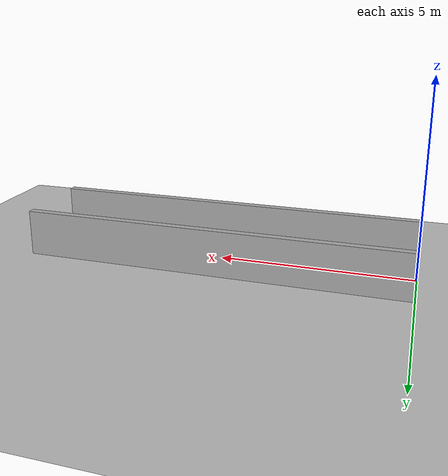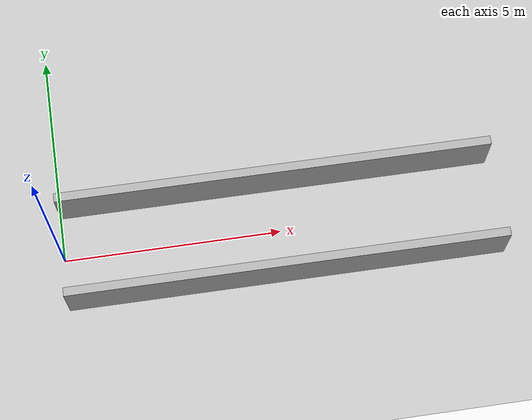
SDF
<?xml version="1.0"?>
<sdf version="1.6">
  <world name="v2-04g-r4-corridor-s5071">
    <gravity>0 0 -9.81</gravity>
    <physics name="v2_deterministic" type="ode">
      <max_step_size>0.002</max_step_size>
      <real_time_update_rate>500</real_time_update_rate>
    </physics>
    <include>
      <uri>model://sun</uri>
    </include>
    <include>
      <uri>model://ground_plane</uri>
    </include>
    <model name="corridor-left">
      <static>true</static>
      <pose>4.998342745 1.112607153 0.600000000 0 0 -0.002883162</pose>
      <link name="link">
        <collision name="collision">
          <geometry>
            <box>
              <size>10.000000 0.200000 1.200000</size>
            </box>
          </geometry>
        </collision>
        <visual name="visual">
          <geometry>
            <box>
              <size>10.000000 0.200000 1.200000</size>
            </box>
          </geometry>
        </visual>
      </link>
    </model>
    <model name="corridor-right">
      <static>true</static>
      <pose>5.006222414 -1.100519995 0.600000000 0 0 -0.002710896</pose>
      <link name="link">
        <collision name="collision">
          <geometry>
            <box>
              <size>10.000000 0.200000 1.200000</size>
            </box>
          </geometry>
        </collision>
        <visual name="visual">
          <geometry>
            <box>
              <size>10.000000 0.200000 1.200000</size>
            </box>
          </geometry>
        </visual>
      </link>
    </model>
  </world>
</sdf>
